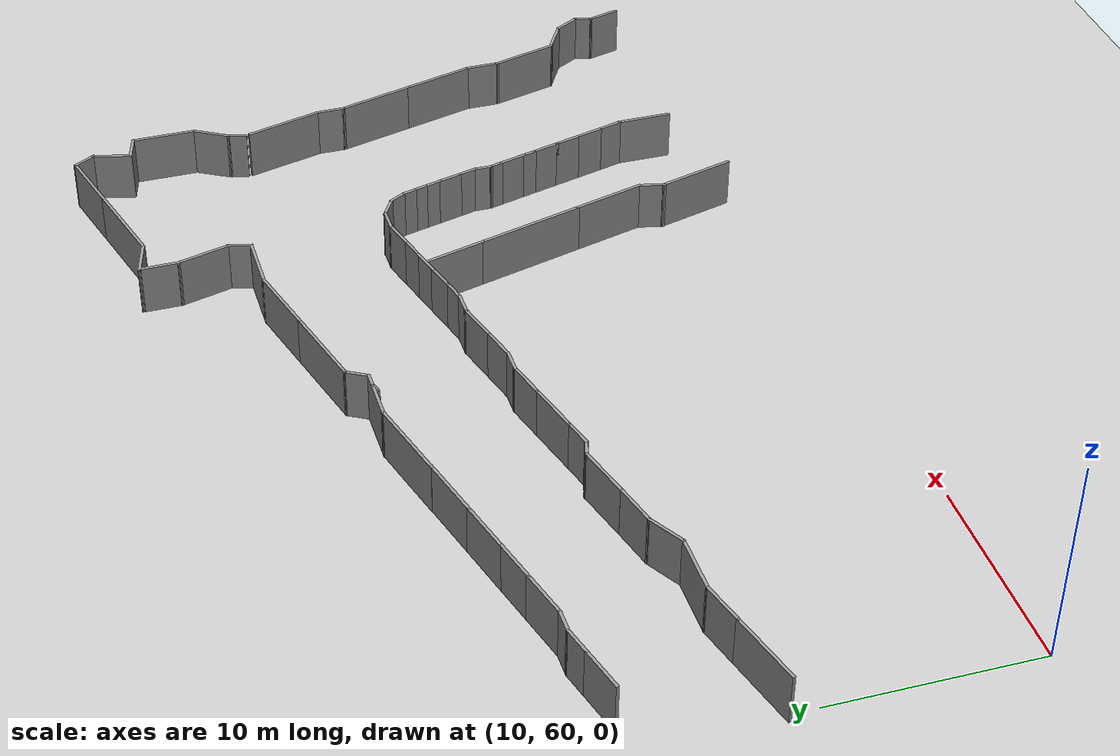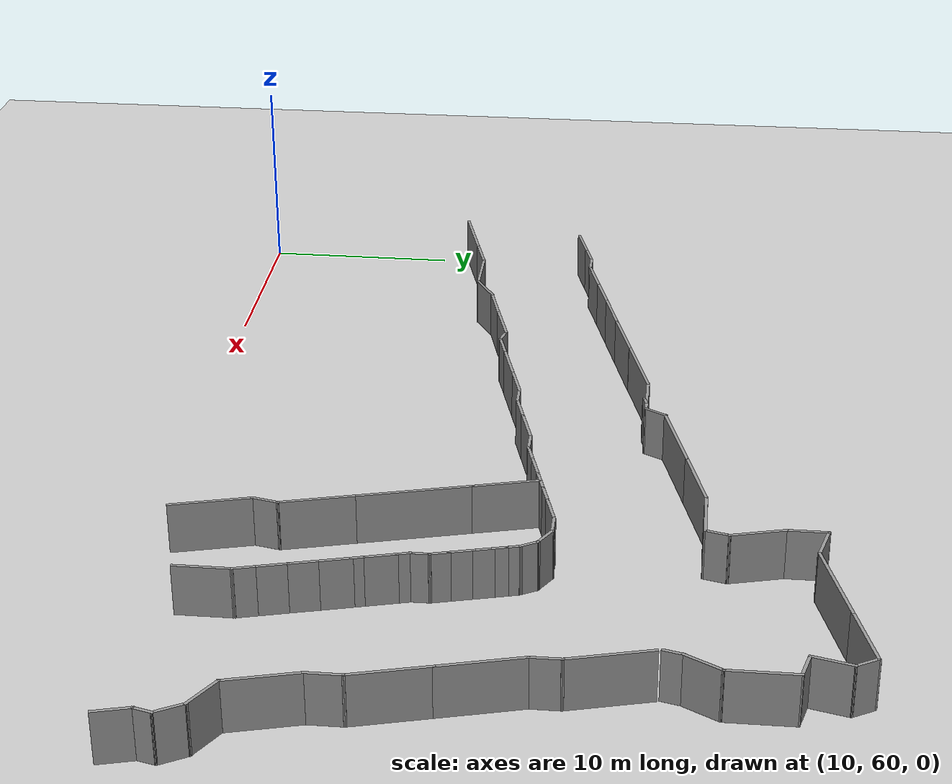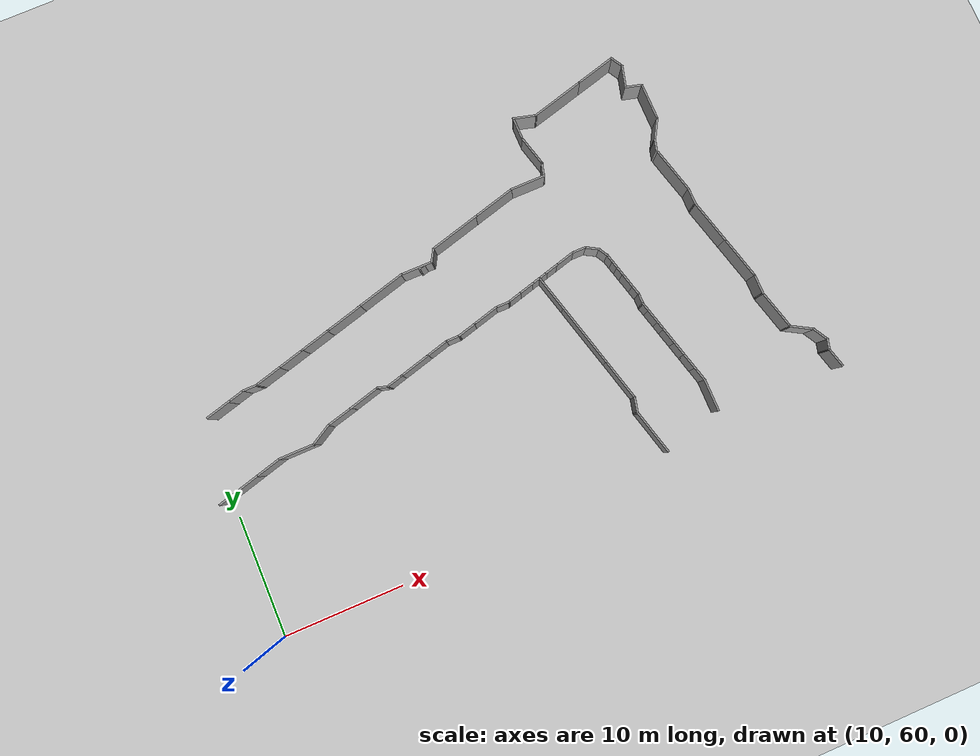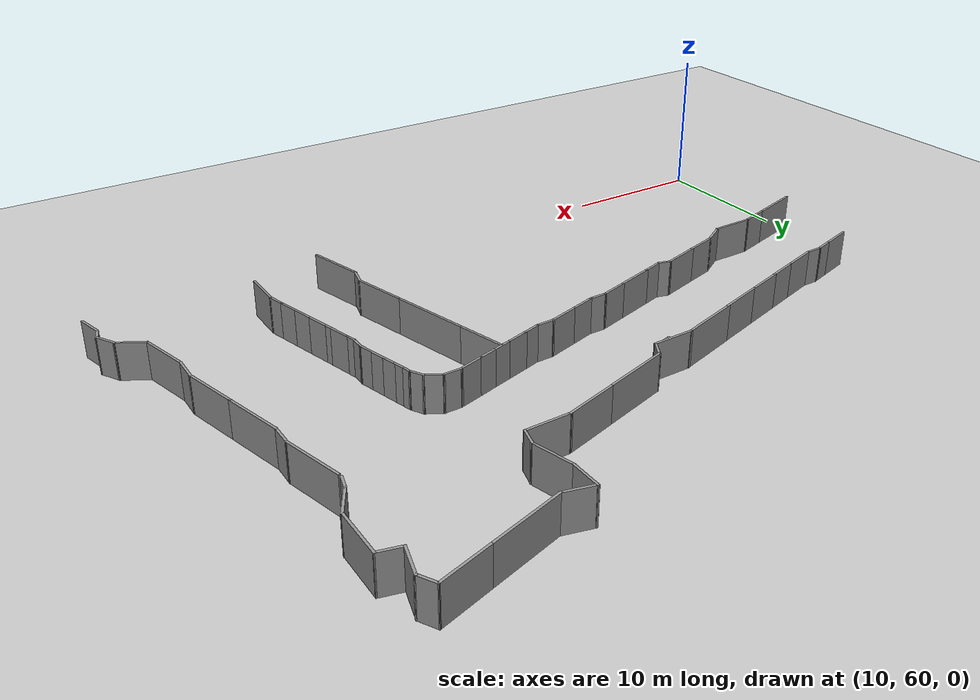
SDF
<sdf version="1.7">
 <world name="default">
  <model name="ground_plane">
   <static>1</static>
   <link name="link">
    <collision name="collision">
     <geometry><plane><normal>0 0 1</normal><size>500 500</size></plane></geometry>
     <surface><friction><ode><mu>100</mu><mu2>50</mu2></ode></friction></surface>
    </collision>
    <visual name="visual">
     <cast_shadows>0</cast_shadows>
     <geometry><plane><normal>0 0 1</normal><size>500 500</size></plane></geometry>
     <material>
      <script><uri>file://media/materials/scripts/gazebo.material</uri><name>Gazebo/Grey</name></script>
     </material>
    </visual>
   </link>
  </model>
  <model name="out_door1">
   <pose>25.5832 12.3476 0 0 -0 0</pose>
   <link name="Wall_159">
    <collision name="Wall_159_Collision">
     <geometry><box><size>1.75 0.15 2.5</size></box></geometry>
     <pose>0 0 1.25 0 -0 0</pose>
    </collision>
    <visual name="Wall_159_Visual">
     <pose>0 0 1.25 0 -0 0</pose>
     <geometry><box><size>1.75 0.15 2.5</size></box></geometry>
     <material>
      <script><uri>file://media/materials/scripts/gazebo.material</uri><name>Gazebo/Grey</name></script>
      <ambient>1 1 1 1</ambient>
     </material>
     <meta><layer>0</layer></meta>
    </visual>
    <pose>32.9844 50.7025 0 0 -0 1.8326</pose>
   </link>
   <link name="Wall_160">
    <collision name="Wall_160_Collision">
     <geometry><box><size>1 0.15 2.5</size></box></geometry>
     <pose>0 0 1.25 0 -0 0</pose>
    </collision>
    <visual name="Wall_160_Visual">
     <pose>0 0 1.25 0 -0 0</pose>
     <geometry><box><size>1 0.15 2.5</size></box></geometry>
     <material>
      <script><uri>file://media/materials/scripts/gazebo.material</uri><name>Gazebo/Grey</name></script>
      <ambient>1 1 1 1</ambient>
     </material>
     <meta><layer>0</layer></meta>
    </visual>
    <pose>32.8873 51.8857 0 0 -0 1.309</pose>
   </link>
   <link name="Wall_161">
    <collision name="Wall_161_Collision">
     <geometry><box><size>1.5 0.15 2.5</size></box></geometry>
     <pose>0 0 1.25 0 -0 0</pose>
    </collision>
    <visual name="Wall_161_Visual">
     <pose>0 0 1.25 0 -0 0</pose>
     <geometry><box><size>1.5 0.15 2.5</size></box></geometry>
     <material>
      <script><uri>file://media/materials/scripts/gazebo.material</uri><name>Gazebo/Grey</name></script>
      <ambient>1 1 1 1</ambient>
     </material>
     <meta><layer>0</layer></meta>
    </visual>
    <pose>32.6598 52.8808 0 0 -0 2.0944</pose>
   </link>
   <link name="Wall_162">
    <collision name="Wall_162_Collision">
     <geometry><box><size>2 0.15 2.5</size></box></geometry>
     <pose>0 0 1.25 0 -0 0</pose>
    </collision>
    <visual name="Wall_162_Visual">
     <pose>0 0 1.25 0 -0 0</pose>
     <geometry><box><size>2 0.15 2.5</size></box></geometry>
     <material>
      <script><uri>file://media/materials/scripts/gazebo.material</uri><name>Gazebo/Grey</name></script>
      <ambient>1 1 1 1</ambient>
     </material>
     <meta><layer>0</layer></meta>
    </visual>
    <pose>31.5212 53.9279 0 0 -0 2.61799</pose>
   </link>
   <link name="Wall_164">
    <collision name="Wall_164_Collision">
     <geometry><box><size>3.5 0.15 2.5</size></box></geometry>
     <pose>0 0 1.25 0 -0 0</pose>
    </collision>
    <visual name="Wall_164_Visual">
     <pose>0 0 1.25 0 -0 0</pose>
     <geometry><box><size>3.5 0.15 2.5</size></box></geometry>
     <material>
      <script><uri>file://media/materials/scripts/gazebo.material</uri><name>Gazebo/Grey</name></script>
      <ambient>1 1 1 1</ambient>
     </material>
     <meta><layer>0</layer></meta>
    </visual>
    <pose>30.2866 56.0083 0 0 -0 1.8326</pose>
   </link>
   <link name="Wall_165">
    <collision name="Wall_165_Collision">
     <geometry><box><size>1.75 0.15 2.5</size></box></geometry>
     <pose>0 0 1.25 0 -0 0</pose>
    </collision>
    <visual name="Wall_165_Visual">
     <pose>0 0 1.25 0 -0 0</pose>
     <geometry><box><size>1.75 0.15 2.5</size></box></geometry>
     <material>
      <script><uri>file://media/materials/scripts/gazebo.material</uri><name>Gazebo/Grey</name></script>
      <ambient>1 1 1 1</ambient>
     </material>
     <meta><layer>0</layer></meta>
    </visual>
    <pose>29.8531 58.4262 0 0 -0 1.5708</pose>
   </link>
   <link name="Wall_166">
    <collision name="Wall_166_Collision">
     <geometry><box><size>3.75 0.15 2.5</size></box></geometry>
     <pose>0 0 1.25 0 -0 0</pose>
    </collision>
    <visual name="Wall_166_Visual">
     <pose>0 0 1.25 0 -0 0</pose>
     <geometry><box><size>3.75 0.15 2.5</size></box></geometry>
     <material>
      <script><uri>file://media/materials/scripts/gazebo.material</uri><name>Gazebo/Grey</name></script>
      <ambient>1 1 1 1</ambient>
     </material>
     <meta><layer>0</layer></meta>
    </visual>
    <pose>29.3872 60.9649 0 0 -0 1.8326</pose>
   </link>
   <link name="Wall_167">
    <collision name="Wall_167_Collision">
     <geometry><box><size>4 0.15 2.5</size></box></geometry>
     <pose>0 0 1.25 0 -0 0</pose>
    </collision>
    <visual name="Wall_167_Visual">
     <pose>0 0 1.25 0 -0 0</pose>
     <geometry><box><size>4 0.15 2.5</size></box></geometry>
     <material>
      <script><uri>file://media/materials/scripts/gazebo.material</uri><name>Gazebo/Grey</name></script>
      <ambient>1 1 1 1</ambient>
     </material>
     <meta><layer>0</layer></meta>
    </visual>
    <pose>28.4231 64.563 0 0 -0 1.8326</pose>
   </link>
   <link name="Wall_168">
    <collision name="Wall_168_Collision">
     <geometry><box><size>1.5 0.15 2.5</size></box></geometry>
     <pose>0 0 1.25 0 -0 0</pose>
    </collision>
    <visual name="Wall_168_Visual">
     <pose>0 0 1.25 0 -0 0</pose>
     <geometry><box><size>1.5 0.15 2.5</size></box></geometry>
     <material>
      <script><uri>file://media/materials/scripts/gazebo.material</uri><name>Gazebo/Grey</name></script>
      <ambient>1 1 1 1</ambient>
     </material>
     <meta><layer>0</layer></meta>
    </visual>
    <pose>27.9249 67.0974 0 0 -0 1.5708</pose>
   </link>
   <link name="Wall_169">
    <collision name="Wall_169_Collision">
     <geometry><box><size>4 0.15 2.5</size></box></geometry>
     <pose>0 0 1.25 0 -0 0</pose>
    </collision>
    <visual name="Wall_169_Visual">
     <pose>0 0 1.25 0 -0 0</pose>
     <geometry><box><size>4 0.15 2.5</size></box></geometry>
     <material>
      <script><uri>file://media/materials/scripts/gazebo.material</uri><name>Gazebo/Grey</name></script>
      <ambient>1 1 1 1</ambient>
     </material>
     <meta><layer>0</layer></meta>
    </visual>
    <pose>27.4267 69.6318 0 0 -0 1.8326</pose>
   </link>
   <link name="Wall_172">
    <collision name="Wall_172_Collision">
     <geometry><box><size>1 0.15 2.5</size></box></geometry>
     <pose>0 0 1.25 0 -0 0</pose>
    </collision>
    <visual name="Wall_172_Visual">
     <pose>0 0 1.25 0 -0 0</pose>
     <geometry><box><size>1 0.15 2.5</size></box></geometry>
     <material>
      <script><uri>file://media/materials/scripts/gazebo.material</uri><name>Gazebo/Grey</name></script>
      <ambient>1 1 1 1</ambient>
     </material>
     <meta><layer>0</layer></meta>
    </visual>
    <pose>26.9941 72.1611 0 0 -0 1.309</pose>
   </link>
   <link name="Wall_173">
    <collision name="Wall_173_Collision">
     <geometry><box><size>2 0.15 2.5</size></box></geometry>
     <pose>0 0 1.25 0 -0 0</pose>
    </collision>
    <visual name="Wall_173_Visual">
     <pose>0 0 1.25 0 -0 0</pose>
     <geometry><box><size>2 0.15 2.5</size></box></geometry>
     <material>
      <script><uri>file://media/materials/scripts/gazebo.material</uri><name>Gazebo/Grey</name></script>
      <ambient>1 1 1 1</ambient>
     </material>
     <meta><layer>0</layer></meta>
    </visual>
    <pose>27.5666 73.3727 0 0 -0 1.0472</pose>
   </link>
   <link name="Wall_174">
    <collision name="Wall_174_Collision">
     <geometry><box><size>3.25 0.15 2.5</size></box></geometry>
     <pose>0 0 1.25 0 -0 0</pose>
    </collision>
    <visual name="Wall_174_Visual">
     <pose>0 0 1.25 0 -0 0</pose>
     <geometry><box><size>3.25 0.15 2.5</size></box></geometry>
     <material>
      <script><uri>file://media/materials/scripts/gazebo.material</uri><name>Gazebo/Grey</name></script>
      <ambient>1 1 1 1</ambient>
     </material>
     <meta><layer>0</layer></meta>
    </visual>
    <pose>28.0291 75.7237 0 0 -0 1.5708</pose>
   </link>
   <link name="Wall_175">
    <collision name="Wall_175_Collision">
     <geometry><box><size>1.5 0.15 2.5</size></box></geometry>
     <pose>0 0 1.25 0 -0 0</pose>
    </collision>
    <visual name="Wall_175_Visual">
     <pose>0 0 1.25 0 -0 0</pose>
     <geometry><box><size>1.5 0.15 2.5</size></box></geometry>
     <material>
      <script><uri>file://media/materials/scripts/gazebo.material</uri><name>Gazebo/Grey</name></script>
      <ambient>1 1 1 1</ambient>
     </material>
     <meta><layer>0</layer></meta>
    </visual>
    <pose>27.3771 77.4484 0 0 -0 2.87979</pose>
   </link>
   <link name="Wall_176">
    <collision name="Wall_176_Collision">
     <geometry><box><size>2 0.15 2.5</size></box></geometry>
     <pose>0 0 1.25 0 -0 0</pose>
    </collision>
    <visual name="Wall_176_Visual">
     <pose>0 0 1.25 0 -0 0</pose>
     <geometry><box><size>2 0.15 2.5</size></box></geometry>
     <material>
      <script><uri>file://media/materials/scripts/gazebo.material</uri><name>Gazebo/Grey</name></script>
      <ambient>1 1 1 1</ambient>
     </material>
     <meta><layer>0</layer></meta>
    </visual>
    <pose>26.9645 78.5166 0 0 -0 1.309</pose>
   </link>
   <link name="Wall_177">
    <collision name="Wall_177_Collision">
     <geometry><box><size>1.25 0.15 2.5</size></box></geometry>
     <pose>0 0 1.25 0 -0 0</pose>
    </collision>
    <visual name="Wall_177_Visual">
     <pose>0 0 1.25 0 -0 0</pose>
     <geometry><box><size>1.25 0.15 2.5</size></box></geometry>
     <material>
      <script><uri>file://media/materials/scripts/gazebo.material</uri><name>Gazebo/Grey</name></script>
      <ambient>1 1 1 1</ambient>
     </material>
     <meta><layer>0</layer></meta>
    </visual>
    <pose>26.9289 79.8864 0 0 -0 2.0944</pose>
   </link>
   <link name="Wall_178">
    <collision name="Wall_178_Collision">
     <geometry><box><size>3.5 0.15 2.5</size></box></geometry>
     <pose>0 0 1.25 0 -0 0</pose>
    </collision>
    <visual name="Wall_178_Visual">
     <pose>0 0 1.25 0 -0 0</pose>
     <geometry><box><size>3.5 0.15 2.5</size></box></geometry>
     <material>
      <script><uri>file://media/materials/scripts/gazebo.material</uri><name>Gazebo/Grey</name></script>
      <ambient>1 1 1 1</ambient>
     </material>
     <meta><layer>0</layer></meta>
    </visual>
    <pose>25.036 79.9292 0 0 -0 -2.87979</pose>
   </link>
   <link name="Wall_179">
    <collision name="Wall_179_Collision">
     <geometry><box><size>4.75 0.15 2.5</size></box></geometry>
     <pose>0 0 1.25 0 -0 0</pose>
    </collision>
    <visual name="Wall_179_Visual">
     <pose>0 0 1.25 0 -0 0</pose>
     <geometry><box><size>4.75 0.15 2.5</size></box></geometry>
     <material>
      <script><uri>file://media/materials/scripts/gazebo.material</uri><name>Gazebo/Grey</name></script>
      <ambient>1 1 1 1</ambient>
     </material>
     <meta><layer>0</layer></meta>
    </visual>
    <pose>21.1964 78.9004 0 0 -0 -2.87979</pose>
   </link>
   <link name="Wall_180">
    <collision name="Wall_180_Collision">
     <geometry><box><size>2 0.15 2.5</size></box></geometry>
     <pose>0 0 1.25 0 -0 0</pose>
    </collision>
    <visual name="Wall_180_Visual">
     <pose>0 0 1.25 0 -0 0</pose>
     <geometry><box><size>2 0.15 2.5</size></box></geometry>
     <material>
      <script><uri>file://media/materials/scripts/gazebo.material</uri><name>Gazebo/Grey</name></script>
      <ambient>1 1 1 1</ambient>
     </material>
     <meta><layer>0</layer></meta>
    </visual>
    <pose>18.0813 78.5445 0 0 -0 2.87979</pose>
   </link>
   <link name="Wall_181">
    <collision name="Wall_181_Collision">
     <geometry><box><size>2 0.15 2.5</size></box></geometry>
     <pose>0 0 1.25 0 -0 0</pose>
    </collision>
    <visual name="Wall_181_Visual">
     <pose>0 0 1.25 0 -0 0</pose>
     <geometry><box><size>2 0.15 2.5</size></box></geometry>
     <material>
      <script><uri>file://media/materials/scripts/gazebo.material</uri><name>Gazebo/Grey</name></script>
      <ambient>1 1 1 1</ambient>
     </material>
     <meta><layer>0</layer></meta>
    </visual>
    <pose>17.1878 77.8589 0 0 -0 -1.5708</pose>
   </link>
   <link name="Wall_182">
    <collision name="Wall_182_Collision">
     <geometry><box><size>2.75 0.15 2.5</size></box></geometry>
     <pose>0 0 1.25 0 -0 0</pose>
    </collision>
    <visual name="Wall_182_Visual">
     <pose>0 0 1.25 0 -0 0</pose>
     <geometry><box><size>2.75 0.15 2.5</size></box></geometry>
     <material>
      <script><uri>file://media/materials/scripts/gazebo.material</uri><name>Gazebo/Grey</name></script>
      <ambient>1 1 1 1</ambient>
     </material>
     <meta><layer>0</layer></meta>
    </visual>
    <pose>17.5243 75.6782 0 0 -0 -1.309</pose>
   </link>
   <link name="Wall_183">
    <collision name="Wall_183_Collision">
     <geometry><box><size>1.25 0.15 2.5</size></box></geometry>
     <pose>0 0 1.25 0 -0 0</pose>
    </collision>
    <visual name="Wall_183_Visual">
     <pose>0 0 1.25 0 -0 0</pose>
     <geometry><box><size>1.25 0.15 2.5</size></box></geometry>
     <material>
      <script><uri>file://media/materials/scripts/gazebo.material</uri><name>Gazebo/Grey</name></script>
      <ambient>1 1 1 1</ambient>
     </material>
     <meta><layer>0</layer></meta>
    </visual>
    <pose>17.7184 73.8913 0 0 -0 -1.8326</pose>
   </link>
   <link name="Wall_184">
    <collision name="Wall_184_Collision">
     <geometry><box><size>3 0.15 2.5</size></box></geometry>
     <pose>0 0 1.25 0 -0 0</pose>
    </collision>
    <visual name="Wall_184_Visual">
     <pose>0 0 1.25 0 -0 0</pose>
     <geometry><box><size>3 0.15 2.5</size></box></geometry>
     <material>
      <script><uri>file://media/materials/scripts/gazebo.material</uri><name>Gazebo/Grey</name></script>
      <ambient>1 1 1 1</ambient>
     </material>
     <meta><layer>0</layer></meta>
    </visual>
    <pose>16.151 73.36 0 0 -0 3.14159</pose>
   </link>
   <link name="Wall_185">
    <collision name="Wall_185_Collision">
     <geometry><box><size>3.75 0.15 2.5</size></box></geometry>
     <pose>0 0 1.25 0 -0 0</pose>
    </collision>
    <visual name="Wall_185_Visual">
     <pose>0 0 1.25 0 -0 0</pose>
     <geometry><box><size>3.75 0.15 2.5</size></box></geometry>
     <material>
      <script><uri>file://media/materials/scripts/gazebo.material</uri><name>Gazebo/Grey</name></script>
      <ambient>1 1 1 1</ambient>
     </material>
     <meta><layer>0</layer></meta>
    </visual>
    <pose>12.9874 72.8941 0 0 -0 -2.87979</pose>
   </link>
   <link name="Wall_186">
    <collision name="Wall_186_Collision">
     <geometry><box><size>4.5 0.15 2.5</size></box></geometry>
     <pose>0 0 1.25 0 -0 0</pose>
    </collision>
    <visual name="Wall_186_Visual">
     <pose>0 0 1.25 0 -0 0</pose>
     <geometry><box><size>4.5 0.15 2.5</size></box></geometry>
     <material>
      <script><uri>file://media/materials/scripts/gazebo.material</uri><name>Gazebo/Grey</name></script>
      <ambient>1 1 1 1</ambient>
     </material>
     <meta><layer>0</layer></meta>
    </visual>
    <pose>9.14782 71.8653 0 0 -0 -2.87979</pose>
   </link>
   <link name="Wall_187">
    <collision name="Wall_187_Collision">
     <geometry><box><size>1.25 0.15 2.5</size></box></geometry>
     <pose>0 0 1.25 0 -0 0</pose>
    </collision>
    <visual name="Wall_187_Visual">
     <pose>0 0 1.25 0 -0 0</pose>
     <geometry><box><size>1.25 0.15 2.5</size></box></geometry>
     <material>
      <script><uri>file://media/materials/scripts/gazebo.material</uri><name>Gazebo/Grey</name></script>
      <ambient>1 1 1 1</ambient>
     </material>
     <meta><layer>0</layer></meta>
    </visual>
    <pose>6.77193 70.8261 0 0 -0 -2.0944</pose>
   </link>
   <link name="Wall_188">
    <collision name="Wall_188_Collision">
     <geometry><box><size>2.84305 0.15 2.5</size></box></geometry>
     <pose>0 0 1.25 0 -0 0</pose>
    </collision>
    <visual name="Wall_188_Visual">
     <pose>0 0 1.25 0 -0 0</pose>
     <geometry><box><size>2.84305 0.15 2.5</size></box></geometry>
     <material>
      <script><uri>file://media/materials/scripts/gazebo.material</uri><name>Gazebo/Grey</name></script>
      <ambient>1 1 1 1</ambient>
     </material>
     <meta><layer>0</layer></meta>
    </visual>
    <pose>5.15041 70.3498 0 0 -0 3.14159</pose>
   </link>
   <link name="Wall_189">
    <collision name="Wall_189_Collision">
     <geometry><box><size>4.33866 0.15 2.5</size></box></geometry>
     <pose>0 0 1.25 0 -0 0</pose>
    </collision>
    <visual name="Wall_189_Visual">
     <pose>0 0 1.25 0 -0 0</pose>
     <geometry><box><size>4.33866 0.15 2.5</size></box></geometry>
     <material>
      <script><uri>file://media/materials/scripts/gazebo.material</uri><name>Gazebo/Grey</name></script>
      <ambient>1 1 1 1</ambient>
     </material>
     <meta><layer>0</layer></meta>
    </visual>
    <pose>1.82817 69.805 0 0 -0 -2.87846</pose>
   </link>
   <link name="Wall_190">
    <collision name="Wall_190_Collision">
     <geometry><box><size>3.25 0.15 2.5</size></box></geometry>
     <pose>0 0 1.25 0 -0 0</pose>
    </collision>
    <visual name="Wall_190_Visual">
     <pose>0 0 1.25 0 -0 0</pose>
     <geometry><box><size>3.25 0.15 2.5</size></box></geometry>
     <material>
      <script><uri>file://media/materials/scripts/gazebo.material</uri><name>Gazebo/Grey</name></script>
      <ambient>1 1 1 1</ambient>
     </material>
     <meta><layer>0</layer></meta>
    </visual>
    <pose>-1.64474 68.8591 0 0 -0 -2.87979</pose>
   </link>
   <link name="Wall_192">
    <collision name="Wall_192_Collision">
     <geometry><box><size>0.25 0.15 2.5</size></box></geometry>
     <pose>0 0 1.25 0 -0 0</pose>
    </collision>
    <visual name="Wall_192_Visual">
     <pose>0 0 1.25 0 -0 0</pose>
     <geometry><box><size>0.25 0.15 2.5</size></box></geometry>
     <material>
      <script><uri>file://media/materials/scripts/gazebo.material</uri><name>Gazebo/Grey</name></script>
      <ambient>1 1 1 1</ambient>
     </material>
     <meta><layer>0</layer></meta>
    </visual>
    <pose>5.43832 70.2282 0 0 -0 0.261799</pose>
   </link>
   <link name="Wall_193">
    <collision name="Wall_193_Collision">
     <geometry><box><size>0.5 0.15 2.5</size></box></geometry>
     <pose>0 0 1.25 0 -0 0</pose>
    </collision>
    <visual name="Wall_193_Visual">
     <pose>0 0 1.25 0 -0 0</pose>
     <geometry><box><size>0.5 0.15 2.5</size></box></geometry>
     <material>
      <script><uri>file://media/materials/scripts/gazebo.material</uri><name>Gazebo/Grey</name></script>
      <ambient>1 1 1 1</ambient>
     </material>
     <meta><layer>0</layer></meta>
    </visual>
    <pose>5.65566 70.2864 0 0 -0 0.261799</pose>
   </link>
   <link name="Wall_195">
    <collision name="Wall_195_Collision">
     <geometry><box><size>2.75 0.15 2.5</size></box></geometry>
     <pose>0 0 1.25 0 -0 0</pose>
    </collision>
    <visual name="Wall_195_Visual">
     <pose>0 0 1.25 0 -0 0</pose>
     <geometry><box><size>2.75 0.15 2.5</size></box></geometry>
     <material>
      <script><uri>file://media/materials/scripts/gazebo.material</uri><name>Gazebo/Grey</name></script>
      <ambient>1 1 1 1</ambient>
     </material>
     <meta><layer>0</layer></meta>
    </visual>
    <pose>-4.39762 68.1215 0 0 -0 -2.87979</pose>
   </link>
   <link name="Wall_196">
    <collision name="Wall_196_Collision">
     <geometry><box><size>2.25 0.15 2.5</size></box></geometry>
     <pose>0 0 1.25 0 -0 0</pose>
    </collision>
    <visual name="Wall_196_Visual">
     <pose>0 0 1.25 0 -0 0</pose>
     <geometry><box><size>2.25 0.15 2.5</size></box></geometry>
     <material>
      <script><uri>file://media/materials/scripts/gazebo.material</uri><name>Gazebo/Grey</name></script>
      <ambient>1 1 1 1</ambient>
     </material>
     <meta><layer>0</layer></meta>
    </visual>
    <pose>-6.66755 67.5132 0 0 -0 -2.87979</pose>
   </link>
   <link name="Wall_197">
    <collision name="Wall_197_Collision">
     <geometry><box><size>2.5 0.15 2.5</size></box></geometry>
     <pose>0 0 1.25 0 -0 0</pose>
    </collision>
    <visual name="Wall_197_Visual">
     <pose>0 0 1.25 0 -0 0</pose>
     <geometry><box><size>2.5 0.15 2.5</size></box></geometry>
     <material>
      <script><uri>file://media/materials/scripts/gazebo.material</uri><name>Gazebo/Grey</name></script>
      <ambient>1 1 1 1</ambient>
     </material>
     <meta><layer>0</layer></meta>
    </visual>
    <pose>-8.81673 66.9374 0 0 -0 -2.87979</pose>
   </link>
   <link name="Wall_198">
    <collision name="Wall_198_Collision">
     <geometry><box><size>1.25 0.15 2.5</size></box></geometry>
     <pose>0 0 1.25 0 -0 0</pose>
    </collision>
    <visual name="Wall_198_Visual">
     <pose>0 0 1.25 0 -0 0</pose>
     <geometry><box><size>1.25 0.15 2.5</size></box></geometry>
     <material>
      <script><uri>file://media/materials/scripts/gazebo.material</uri><name>Gazebo/Grey</name></script>
      <ambient>1 1 1 1</ambient>
     </material>
     <meta><layer>0</layer></meta>
    </visual>
    <pose>-10.5017 66.6332 0 0 -0 3.14159</pose>
   </link>
   <link name="Wall_199">
    <collision name="Wall_199_Collision">
     <geometry><box><size>1.5 0.15 2.5</size></box></geometry>
     <pose>0 0 1.25 0 -0 0</pose>
    </collision>
    <visual name="Wall_199_Visual">
     <pose>0 0 1.25 0 -0 0</pose>
     <geometry><box><size>1.5 0.15 2.5</size></box></geometry>
     <material>
      <script><uri>file://media/materials/scripts/gazebo.material</uri><name>Gazebo/Grey</name></script>
      <ambient>1 1 1 1</ambient>
     </material>
     <meta><layer>0</layer></meta>
    </visual>
    <pose>-11.7037 66.4585 0 0 -0 -2.87979</pose>
   </link>
   <link name="Wall_200">
    <collision name="Wall_200_Collision">
     <geometry><box><size>2.25 0.15 2.5</size></box></geometry>
     <pose>0 0 1.25 0 -0 0</pose>
    </collision>
    <visual name="Wall_200_Visual">
     <pose>0 0 1.25 0 -0 0</pose>
     <geometry><box><size>2.25 0.15 2.5</size></box></geometry>
     <material>
      <script><uri>file://media/materials/scripts/gazebo.material</uri><name>Gazebo/Grey</name></script>
      <ambient>1 1 1 1</ambient>
     </material>
     <meta><layer>0</layer></meta>
    </visual>
    <pose>-13.3699 66.0121 0 0 -0 -2.87979</pose>
   </link>
   <link name="Wall_282">
    <collision name="Wall_282_Collision">
     <geometry><box><size>3.75 0.15 2.5</size></box></geometry>
     <pose>0 0 1.25 0 -0 0</pose>
    </collision>
    <visual name="Wall_282_Visual">
     <pose>0 0 1.25 0 -0 0</pose>
     <geometry><box><size>3.75 0.15 2.5</size></box></geometry>
     <material>
      <script><uri>file://media/materials/scripts/gazebo.material</uri><name>Gazebo/Grey</name></script>
      <ambient>1 1 1 1</ambient>
     </material>
     <meta><layer>0</layer></meta>
    </visual>
    <pose>-14.1119 59.5461 0 0 -0 0.261799</pose>
   </link>
   <link name="Wall_283">
    <collision name="Wall_283_Collision">
     <geometry><box><size>2.25 0.15 2.5</size></box></geometry>
     <pose>0 0 1.25 0 -0 0</pose>
    </collision>
    <visual name="Wall_283_Visual">
     <pose>0 0 1.25 0 -0 0</pose>
     <geometry><box><size>2.25 0.15 2.5</size></box></geometry>
     <material>
      <script><uri>file://media/materials/scripts/gazebo.material</uri><name>Gazebo/Grey</name></script>
      <ambient>1 1 1 1</ambient>
     </material>
     <meta><layer>0</layer></meta>
    </visual>
    <pose>-11.359 60.2837 0 0 -0 0.261799</pose>
   </link>
   <link name="Wall_284">
    <collision name="Wall_284_Collision">
     <geometry><box><size>3 0.15 2.5</size></box></geometry>
     <pose>0 0 1.25 0 -0 0</pose>
    </collision>
    <visual name="Wall_284_Visual">
     <pose>0 0 1.25 0 -0 0</pose>
     <geometry><box><size>3 0.15 2.5</size></box></geometry>
     <material>
      <script><uri>file://media/materials/scripts/gazebo.material</uri><name>Gazebo/Grey</name></script>
      <ambient>1 1 1 1</ambient>
     </material>
     <meta><layer>0</layer></meta>
    </visual>
    <pose>-8.91974 60.5555 0 0 -0 0</pose>
   </link>
   <link name="Wall_285">
    <collision name="Wall_285_Collision">
     <geometry><box><size>2 0.15 2.5</size></box></geometry>
     <pose>0 0 1.25 0 -0 0</pose>
    </collision>
    <visual name="Wall_285_Visual">
     <pose>0 0 1.25 0 -0 0</pose>
     <geometry><box><size>2 0.15 2.5</size></box></geometry>
     <material>
      <script><uri>file://media/materials/scripts/gazebo.material</uri><name>Gazebo/Grey</name></script>
      <ambient>1 1 1 1</ambient>
     </material>
     <meta><layer>0</layer></meta>
    </visual>
    <pose>-6.69367 61.018 0 0 -0 0.523599</pose>
   </link>
   <link name="Wall_286">
    <collision name="Wall_286_Collision">
     <geometry><box><size>2.33459 0.15 2.5</size></box></geometry>
     <pose>0 0 1.25 0 -0 0</pose>
    </collision>
    <visual name="Wall_286_Visual">
     <pose>0 0 1.25 0 -0 0</pose>
     <geometry><box><size>2.33459 0.15 2.5</size></box></geometry>
     <material>
      <script><uri>file://media/materials/scripts/gazebo.material</uri><name>Gazebo/Grey</name></script>
      <ambient>1 1 1 1</ambient>
     </material>
     <meta><layer>0</layer></meta>
    </visual>
    <pose>-4.83465 61.7522 0 0 -0 0.251439</pose>
   </link>
   <link name="Wall_287">
    <collision name="Wall_287_Collision">
     <geometry><box><size>2.75 0.15 2.5</size></box></geometry>
     <pose>0 0 1.25 0 -0 0</pose>
    </collision>
    <visual name="Wall_287_Visual">
     <pose>0 0 1.25 0 -0 0</pose>
     <geometry><box><size>2.75 0.15 2.5</size></box></geometry>
     <material>
      <script><uri>file://media/materials/scripts/gazebo.material</uri><name>Gazebo/Grey</name></script>
      <ambient>1 1 1 1</ambient>
     </material>
     <meta><layer>0</layer></meta>
    </visual>
    <pose>-2.53849 62.3604 0 0 -0 0.261799</pose>
   </link>
   <link name="Wall_289">
    <collision name="Wall_289_Collision">
     <geometry><box><size>1 0.15 2.5</size></box></geometry>
     <pose>0 0 1.25 0 -0 0</pose>
    </collision>
    <visual name="Wall_289_Visual">
     <pose>0 0 1.25 0 -0 0</pose>
     <geometry><box><size>1 0.15 2.5</size></box></geometry>
     <material>
      <script><uri>file://media/materials/scripts/gazebo.material</uri><name>Gazebo/Grey</name></script>
      <ambient>1 1 1 1</ambient>
     </material>
     <meta><layer>0</layer></meta>
    </visual>
    <pose>-0.872263 62.5869 0 0 -0 -0.261799</pose>
   </link>
   <link name="Wall_290">
    <collision name="Wall_290_Collision">
     <geometry><box><size>1.5 0.15 2.5</size></box></geometry>
     <pose>0 0 1.25 0 -0 0</pose>
    </collision>
    <visual name="Wall_290_Visual">
     <pose>0 0 1.25 0 -0 0</pose>
     <geometry><box><size>1.5 0.15 2.5</size></box></geometry>
     <material>
      <script><uri>file://media/materials/scripts/gazebo.material</uri><name>Gazebo/Grey</name></script>
      <ambient>1 1 1 1</ambient>
     </material>
     <meta><layer>0</layer></meta>
    </visual>
    <pose>0.190256 62.6516 0 0 -0 0.261799</pose>
   </link>
   <link name="Wall_291">
    <collision name="Wall_291_Collision">
     <geometry><box><size>2.75 0.15 2.5</size></box></geometry>
     <pose>0 0 1.25 0 -0 0</pose>
    </collision>
    <visual name="Wall_291_Visual">
     <pose>0 0 1.25 0 -0 0</pose>
     <geometry><box><size>2.75 0.15 2.5</size></box></geometry>
     <material>
      <script><uri>file://media/materials/scripts/gazebo.material</uri><name>Gazebo/Grey</name></script>
      <ambient>1 1 1 1</ambient>
     </material>
     <meta><layer>0</layer></meta>
    </visual>
    <pose>2.09796 63.1628 0 0 -0 0.261799</pose>
   </link>
   <link name="Wall_292">
    <collision name="Wall_292_Collision">
     <geometry><box><size>2 0.15 2.5</size></box></geometry>
     <pose>0 0 1.25 0 -0 0</pose>
    </collision>
    <visual name="Wall_292_Visual">
     <pose>0 0 1.25 0 -0 0</pose>
     <geometry><box><size>2 0.15 2.5</size></box></geometry>
     <material>
      <script><uri>file://media/materials/scripts/gazebo.material</uri><name>Gazebo/Grey</name></script>
      <ambient>1 1 1 1</ambient>
     </material>
     <meta><layer>0</layer></meta>
    </visual>
    <pose>4.24714 63.7387 0 0 -0 0.261799</pose>
   </link>
   <link name="Wall_293">
    <collision name="Wall_293_Collision">
     <geometry><box><size>1.25 0.15 2.5</size></box></geometry>
     <pose>0 0 1.25 0 -0 0</pose>
    </collision>
    <visual name="Wall_293_Visual">
     <pose>0 0 1.25 0 -0 0</pose>
     <geometry><box><size>1.25 0.15 2.5</size></box></geometry>
     <material>
      <script><uri>file://media/materials/scripts/gazebo.material</uri><name>Gazebo/Grey</name></script>
      <ambient>1 1 1 1</ambient>
     </material>
     <meta><layer>0</layer></meta>
    </visual>
    <pose>5.69063 63.9781 0 0 -0 0</pose>
   </link>
   <link name="Wall_294">
    <collision name="Wall_294_Collision">
     <geometry><box><size>1.75 0.15 2.5</size></box></geometry>
     <pose>0 0 1.25 0 -0 0</pose>
    </collision>
    <visual name="Wall_294_Visual">
     <pose>0 0 1.25 0 -0 0</pose>
     <geometry><box><size>1.75 0.15 2.5</size></box></geometry>
     <material>
      <script><uri>file://media/materials/scripts/gazebo.material</uri><name>Gazebo/Grey</name></script>
      <ambient>1 1 1 1</ambient>
     </material>
     <meta><layer>0</layer></meta>
    </visual>
    <pose>7.01337 64.1851 0 0 -0 0.261799</pose>
   </link>
   <link name="Wall_295">
    <collision name="Wall_295_Collision">
     <geometry><box><size>2.25 0.15 2.5</size></box></geometry>
     <pose>0 0 1.25 0 -0 0</pose>
    </collision>
    <visual name="Wall_295_Visual">
     <pose>0 0 1.25 0 -0 0</pose>
     <geometry><box><size>2.25 0.15 2.5</size></box></geometry>
     <material>
      <script><uri>file://media/materials/scripts/gazebo.material</uri><name>Gazebo/Grey</name></script>
      <ambient>1 1 1 1</ambient>
     </material>
     <meta><layer>0</layer></meta>
    </visual>
    <pose>8.80033 64.6639 0 0 -0 0.261799</pose>
   </link>
   <link name="Wall_296">
    <collision name="Wall_296_Collision">
     <geometry><box><size>1.25 0.15 2.5</size></box></geometry>
     <pose>0 0 1.25 0 -0 0</pose>
    </collision>
    <visual name="Wall_296_Visual">
     <pose>0 0 1.25 0 -0 0</pose>
     <geometry><box><size>1.25 0.15 2.5</size></box></geometry>
     <material>
      <script><uri>file://media/materials/scripts/gazebo.material</uri><name>Gazebo/Grey</name></script>
      <ambient>1 1 1 1</ambient>
     </material>
     <meta><layer>0</layer></meta>
    </visual>
    <pose>10.3645 64.9357 0 0 -0 0</pose>
   </link>
   <link name="Wall_297">
    <collision name="Wall_297_Collision">
     <geometry><box><size>1.25 0.15 2.5</size></box></geometry>
     <pose>0 0 1.25 0 -0 0</pose>
    </collision>
    <visual name="Wall_297_Visual">
     <pose>0 0 1.25 0 -0 0</pose>
     <geometry><box><size>1.25 0.15 2.5</size></box></geometry>
     <material>
      <script><uri>file://media/materials/scripts/gazebo.material</uri><name>Gazebo/Grey</name></script>
      <ambient>1 1 1 1</ambient>
     </material>
     <meta><layer>0</layer></meta>
    </visual>
    <pose>11.4458 65.078 0 0 -0 0.261799</pose>
   </link>
   <link name="Wall_298">
    <collision name="Wall_298_Collision">
     <geometry><box><size>1.5 0.15 2.5</size></box></geometry>
     <pose>0 0 1.25 0 -0 0</pose>
    </collision>
    <visual name="Wall_298_Visual">
     <pose>0 0 1.25 0 -0 0</pose>
     <geometry><box><size>1.5 0.15 2.5</size></box></geometry>
     <material>
      <script><uri>file://media/materials/scripts/gazebo.material</uri><name>Gazebo/Grey</name></script>
      <ambient>1 1 1 1</ambient>
     </material>
     <meta><layer>0</layer></meta>
    </visual>
    <pose>12.6291 65.3951 0 0 -0 0.261799</pose>
   </link>
   <link name="Wall_299">
    <collision name="Wall_299_Collision">
     <geometry><box><size>1.5 0.15 2.5</size></box></geometry>
     <pose>0 0 1.25 0 -0 0</pose>
    </collision>
    <visual name="Wall_299_Visual">
     <pose>0 0 1.25 0 -0 0</pose>
     <geometry><box><size>1.5 0.15 2.5</size></box></geometry>
     <material>
      <script><uri>file://media/materials/scripts/gazebo.material</uri><name>Gazebo/Grey</name></script>
      <ambient>1 1 1 1</ambient>
     </material>
     <meta><layer>0</layer></meta>
    </visual>
    <pose>13.9331 65.7445 0 0 -0 0.261799</pose>
   </link>
   <link name="Wall_300">
    <collision name="Wall_300_Collision">
     <geometry><box><size>1.25 0.15 2.5</size></box></geometry>
     <pose>0 0 1.25 0 -0 0</pose>
    </collision>
    <visual name="Wall_300_Visual">
     <pose>0 0 1.25 0 -0 0</pose>
     <geometry><box><size>1.25 0.15 2.5</size></box></geometry>
     <material>
      <script><uri>file://media/materials/scripts/gazebo.material</uri><name>Gazebo/Grey</name></script>
      <ambient>1 1 1 1</ambient>
     </material>
     <meta><layer>0</layer></meta>
    </visual>
    <pose>15.1163 66.0616 0 0 -0 0.261799</pose>
   </link>
   <link name="Wall_301">
    <collision name="Wall_301_Collision">
     <geometry><box><size>1.75 0.15 2.5</size></box></geometry>
     <pose>0 0 1.25 0 -0 0</pose>
    </collision>
    <visual name="Wall_301_Visual">
     <pose>0 0 1.25 0 -0 0</pose>
     <geometry><box><size>1.75 0.15 2.5</size></box></geometry>
     <material>
      <script><uri>file://media/materials/scripts/gazebo.material</uri><name>Gazebo/Grey</name></script>
      <ambient>1 1 1 1</ambient>
     </material>
     <meta><layer>0</layer></meta>
    </visual>
    <pose>16.4203 66.411 0 0 -0 0.261799</pose>
   </link>
   <link name="Wall_302">
    <collision name="Wall_302_Collision">
     <geometry><box><size>1.25 0.15 2.5</size></box></geometry>
     <pose>0 0 1.25 0 -0 0</pose>
    </collision>
    <visual name="Wall_302_Visual">
     <pose>0 0 1.25 0 -0 0</pose>
     <geometry><box><size>1.25 0.15 2.5</size></box></geometry>
     <material>
      <script><uri>file://media/materials/scripts/gazebo.material</uri><name>Gazebo/Grey</name></script>
      <ambient>1 1 1 1</ambient>
     </material>
     <meta><layer>0</layer></meta>
    </visual>
    <pose>17.7431 66.618 0 0 -0 0</pose>
   </link>
   <link name="Wall_303">
    <collision name="Wall_303_Collision">
     <geometry><box><size>1.25 0.15 2.5</size></box></geometry>
     <pose>0 0 1.25 0 -0 0</pose>
    </collision>
    <visual name="Wall_303_Visual">
     <pose>0 0 1.25 0 -0 0</pose>
     <geometry><box><size>1.25 0.15 2.5</size></box></geometry>
     <material>
      <script><uri>file://media/materials/scripts/gazebo.material</uri><name>Gazebo/Grey</name></script>
      <ambient>1 1 1 1</ambient>
     </material>
     <meta><layer>0</layer></meta>
    </visual>
    <pose>18.7694 66.343 0 0 -0 -0.523599</pose>
   </link>
   <link name="Wall_304">
    <collision name="Wall_304_Collision">
     <geometry><box><size>1 0.15 2.5</size></box></geometry>
     <pose>0 0 1.25 0 -0 0</pose>
    </collision>
    <visual name="Wall_304_Visual">
     <pose>0 0 1.25 0 -0 0</pose>
     <geometry><box><size>1 0.15 2.5</size></box></geometry>
     <material>
      <script><uri>file://media/materials/scripts/gazebo.material</uri><name>Gazebo/Grey</name></script>
      <ambient>1 1 1 1</ambient>
     </material>
     <meta><layer>0</layer></meta>
    </visual>
    <pose>19.4582 65.7 0 0 -0 -1.0472</pose>
   </link>
   <link name="Wall_306">
    <collision name="Wall_306_Collision">
     <geometry><box><size>0.75 0.15 2.5</size></box></geometry>
     <pose>0 0 1.25 0 -0 0</pose>
    </collision>
    <visual name="Wall_306_Visual">
     <pose>0 0 1.25 0 -0 0</pose>
     <geometry><box><size>0.75 0.15 2.5</size></box></geometry>
     <material>
      <script><uri>file://media/materials/scripts/gazebo.material</uri><name>Gazebo/Grey</name></script>
      <ambient>1 1 1 1</ambient>
     </material>
     <meta><layer>0</layer></meta>
    </visual>
    <pose>19.7483 65.0421 0 0 -0 -1.309</pose>
   </link>
   <link name="Wall_307">
    <collision name="Wall_307_Collision">
     <geometry><box><size>0.75 0.15 2.5</size></box></geometry>
     <pose>0 0 1.25 0 -0 0</pose>
    </collision>
    <visual name="Wall_307_Visual">
     <pose>0 0 1.25 0 -0 0</pose>
     <geometry><box><size>0.75 0.15 2.5</size></box></geometry>
     <material>
      <script><uri>file://media/materials/scripts/gazebo.material</uri><name>Gazebo/Grey</name></script>
      <ambient>1 1 1 1</ambient>
     </material>
     <meta><layer>0</layer></meta>
    </visual>
    <pose>19.9036 64.4626 0 0 -0 -1.309</pose>
   </link>
   <link name="Wall_308">
    <collision name="Wall_308_Collision">
     <geometry><box><size>1 0.15 2.5</size></box></geometry>
     <pose>0 0 1.25 0 -0 0</pose>
    </collision>
    <visual name="Wall_308_Visual">
     <pose>0 0 1.25 0 -0 0</pose>
     <geometry><box><size>1 0.15 2.5</size></box></geometry>
     <material>
      <script><uri>file://media/materials/scripts/gazebo.material</uri><name>Gazebo/Grey</name></script>
      <ambient>1 1 1 1</ambient>
     </material>
     <meta><layer>0</layer></meta>
    </visual>
    <pose>20.0913 63.7623 0 0 -0 -1.309</pose>
   </link>
   <link name="Wall_309">
    <collision name="Wall_309_Collision">
     <geometry><box><size>1.25 0.15 2.5</size></box></geometry>
     <pose>0 0 1.25 0 -0 0</pose>
    </collision>
    <visual name="Wall_309_Visual">
     <pose>0 0 1.25 0 -0 0</pose>
     <geometry><box><size>1.25 0.15 2.5</size></box></geometry>
     <material>
      <script><uri>file://media/materials/scripts/gazebo.material</uri><name>Gazebo/Grey</name></script>
      <ambient>1 1 1 1</ambient>
     </material>
     <meta><layer>0</layer></meta>
    </visual>
    <pose>20.3436 62.8205 0 0 -0 -1.309</pose>
   </link>
   <link name="Wall_310">
    <collision name="Wall_310_Collision">
     <geometry><box><size>1 0.15 2.5</size></box></geometry>
     <pose>0 0 1.25 0 -0 0</pose>
    </collision>
    <visual name="Wall_310_Visual">
     <pose>0 0 1.25 0 -0 0</pose>
     <geometry><box><size>1 0.15 2.5</size></box></geometry>
     <material>
      <script><uri>file://media/materials/scripts/gazebo.material</uri><name>Gazebo/Grey</name></script>
      <ambient>1 1 1 1</ambient>
     </material>
     <meta><layer>0</layer></meta>
    </visual>
    <pose>20.596 61.8787 0 0 -0 -1.309</pose>
   </link>
   <link name="Wall_311">
    <collision name="Wall_311_Collision">
     <geometry><box><size>1 0.15 2.5</size></box></geometry>
     <pose>0 0 1.25 0 -0 0</pose>
    </collision>
    <visual name="Wall_311_Visual">
     <pose>0 0 1.25 0 -0 0</pose>
     <geometry><box><size>1 0.15 2.5</size></box></geometry>
     <material>
      <script><uri>file://media/materials/scripts/gazebo.material</uri><name>Gazebo/Grey</name></script>
      <ambient>1 1 1 1</ambient>
     </material>
     <meta><layer>0</layer></meta>
    </visual>
    <pose>20.706 61.0432 0 0 -0 -1.5708</pose>
   </link>
   <link name="Wall_312">
    <collision name="Wall_312_Collision">
     <geometry><box><size>0.75 0.15 2.5</size></box></geometry>
     <pose>0 0 1.25 0 -0 0</pose>
    </collision>
    <visual name="Wall_312_Visual">
     <pose>0 0 1.25 0 -0 0</pose>
     <geometry><box><size>0.75 0.15 2.5</size></box></geometry>
     <material>
      <script><uri>file://media/materials/scripts/gazebo.material</uri><name>Gazebo/Grey</name></script>
      <ambient>1 1 1 1</ambient>
     </material>
     <meta><layer>0</layer></meta>
    </visual>
    <pose>20.7836 60.3284 0 0 -0 -1.309</pose>
   </link>
   <link name="Wall_313">
    <collision name="Wall_313_Collision">
     <geometry><box><size>1.5 0.15 2.5</size></box></geometry>
     <pose>0 0 1.25 0 -0 0</pose>
    </collision>
    <visual name="Wall_313_Visual">
     <pose>0 0 1.25 0 -0 0</pose>
     <geometry><box><size>1.5 0.15 2.5</size></box></geometry>
     <material>
      <script><uri>file://media/materials/scripts/gazebo.material</uri><name>Gazebo/Grey</name></script>
      <ambient>1 1 1 1</ambient>
     </material>
     <meta><layer>0</layer></meta>
    </visual>
    <pose>21.036 59.3866 0 0 -0 -1.309</pose>
   </link>
   <link name="Wall_314">
    <collision name="Wall_314_Collision">
     <geometry><box><size>0.75 0.15 2.5</size></box></geometry>
     <pose>0 0 1.25 0 -0 0</pose>
    </collision>
    <visual name="Wall_314_Visual">
     <pose>0 0 1.25 0 -0 0</pose>
     <geometry><box><size>0.75 0.15 2.5</size></box></geometry>
     <material>
      <script><uri>file://media/materials/scripts/gazebo.material</uri><name>Gazebo/Grey</name></script>
      <ambient>1 1 1 1</ambient>
     </material>
     <meta><layer>0</layer></meta>
    </visual>
    <pose>21.2883 58.4449 0 0 -0 -1.309</pose>
   </link>
   <link name="Wall_316">
    <collision name="Wall_316_Collision">
     <geometry><box><size>1.5 0.15 2.5</size></box></geometry>
     <pose>0 0 1.25 0 -0 0</pose>
    </collision>
    <visual name="Wall_316_Visual">
     <pose>0 0 1.25 0 -0 0</pose>
     <geometry><box><size>1.5 0.15 2.5</size></box></geometry>
     <material>
      <script><uri>file://media/materials/scripts/gazebo.material</uri><name>Gazebo/Grey</name></script>
      <ambient>1 1 1 1</ambient>
     </material>
     <meta><layer>0</layer></meta>
    </visual>
    <pose>21.5407 57.5031 0 0 -0 -1.309</pose>
   </link>
   <link name="Wall_317">
    <collision name="Wall_317_Collision">
     <geometry><box><size>1.5 0.15 2.5</size></box></geometry>
     <pose>0 0 1.25 0 -0 0</pose>
    </collision>
    <visual name="Wall_317_Visual">
     <pose>0 0 1.25 0 -0 0</pose>
     <geometry><box><size>1.5 0.15 2.5</size></box></geometry>
     <material>
      <script><uri>file://media/materials/scripts/gazebo.material</uri><name>Gazebo/Grey</name></script>
      <ambient>1 1 1 1</ambient>
     </material>
     <meta><layer>0</layer></meta>
    </visual>
    <pose>21.8901 56.1991 0 0 -0 -1.309</pose>
   </link>
   <link name="Wall_318">
    <collision name="Wall_318_Collision">
     <geometry><box><size>1.5 0.15 2.5</size></box></geometry>
     <pose>0 0 1.25 0 -0 0</pose>
    </collision>
    <visual name="Wall_318_Visual">
     <pose>0 0 1.25 0 -0 0</pose>
     <geometry><box><size>1.5 0.15 2.5</size></box></geometry>
     <material>
      <script><uri>file://media/materials/scripts/gazebo.material</uri><name>Gazebo/Grey</name></script>
      <ambient>1 1 1 1</ambient>
     </material>
     <meta><layer>0</layer></meta>
    </visual>
    <pose>22.2395 54.8951 0 0 -0 -1.309</pose>
   </link>
   <link name="Wall_319">
    <collision name="Wall_319_Collision">
     <geometry><box><size>1.25 0.15 2.5</size></box></geometry>
     <pose>0 0 1.25 0 -0 0</pose>
    </collision>
    <visual name="Wall_319_Visual">
     <pose>0 0 1.25 0 -0 0</pose>
     <geometry><box><size>1.25 0.15 2.5</size></box></geometry>
     <material>
      <script><uri>file://media/materials/scripts/gazebo.material</uri><name>Gazebo/Grey</name></script>
      <ambient>1 1 1 1</ambient>
     </material>
     <meta><layer>0</layer></meta>
    </visual>
    <pose>22.5565 53.7118 0 0 -0 -1.309</pose>
   </link>
   <link name="Wall_321">
    <collision name="Wall_321_Collision">
     <geometry><box><size>2.75 0.15 2.5</size></box></geometry>
     <pose>0 0 1.25 0 -0 0</pose>
    </collision>
    <visual name="Wall_321_Visual">
     <pose>0 0 1.25 0 -0 0</pose>
     <geometry><box><size>2.75 0.15 2.5</size></box></geometry>
     <material>
      <script><uri>file://media/materials/scripts/gazebo.material</uri><name>Gazebo/Grey</name></script>
      <ambient>1 1 1 1</ambient>
     </material>
     <meta><layer>0</layer></meta>
    </visual>
    <pose>22.6989 51.8806 0 0 -0 -1.5708</pose>
   </link>
   <link name="Wall_453">
    <collision name="Wall_453_Collision">
     <geometry><box><size>3.25 0.15 2.5</size></box></geometry>
     <pose>0 0 1.25 0 -0 0</pose>
    </collision>
    <visual name="Wall_453_Visual">
     <pose>0 0 1.25 0 -0 0</pose>
     <geometry><box><size>3.25 0.15 2.5</size></box></geometry>
     <material>
      <script><uri>file://media/materials/scripts/gazebo.material</uri><name>Gazebo/Grey</name></script>
      <ambient>1 1 1 1</ambient>
     </material>
     <meta><layer>0</layer></meta>
    </visual>
    <pose>14.346 64.2184 0 0 -0 -1.309</pose>
   </link>
   <link name="Wall_454">
    <collision name="Wall_454_Collision">
     <geometry><box><size>5.5 0.15 2.5</size></box></geometry>
     <pose>0 0 1.25 0 -0 0</pose>
    </collision>
    <visual name="Wall_454_Visual">
     <pose>0 0 1.25 0 -0 0</pose>
     <geometry><box><size>5.5 0.15 2.5</size></box></geometry>
     <material>
      <script><uri>file://media/materials/scripts/gazebo.material</uri><name>Gazebo/Grey</name></script>
      <ambient>1 1 1 1</ambient>
     </material>
     <meta><layer>0</layer></meta>
    </visual>
    <pose>15.4395 60.1373 0 0 -0 -1.309</pose>
   </link>
   <link name="Wall_455">
    <collision name="Wall_455_Collision">
     <geometry><box><size>3.75 0.15 2.5</size></box></geometry>
     <pose>0 0 1.25 0 -0 0</pose>
    </collision>
    <visual name="Wall_455_Visual">
     <pose>0 0 1.25 0 -0 0</pose>
     <geometry><box><size>3.75 0.15 2.5</size></box></geometry>
     <material>
      <script><uri>file://media/materials/scripts/gazebo.material</uri><name>Gazebo/Grey</name></script>
      <ambient>1 1 1 1</ambient>
     </material>
     <meta><layer>0</layer></meta>
    </visual>
    <pose>16.5977 55.8148 0 0 -0 -1.309</pose>
   </link>
   <link name="Wall_456">
    <collision name="Wall_456_Collision">
     <geometry><box><size>1.40573 0.15 2.5</size></box></geometry>
     <pose>0 0 1.25 0 -0 0</pose>
    </collision>
    <visual name="Wall_456_Visual">
     <pose>0 0 1.25 0 -0 0</pose>
     <geometry><box><size>1.40573 0.15 2.5</size></box></geometry>
     <material>
      <script><uri>file://media/materials/scripts/gazebo.material</uri><name>Gazebo/Grey</name></script>
      <ambient>1 1 1 1</ambient>
     </material>
     <meta><layer>0</layer></meta>
    </visual>
    <pose>16.9213 53.4647 0 0 -0 -1.79951</pose>
   </link>
   <link name="Wall_457">
    <collision name="Wall_457_Collision">
     <geometry><box><size>4 0.15 2.5</size></box></geometry>
     <pose>0 0 1.25 0 -0 0</pose>
    </collision>
    <visual name="Wall_457_Visual">
     <pose>0 0 1.25 0 -0 0</pose>
     <geometry><box><size>4 0.15 2.5</size></box></geometry>
     <material>
      <script><uri>file://media/materials/scripts/gazebo.material</uri><name>Gazebo/Grey</name></script>
      <ambient>1 1 1 1</ambient>
     </material>
     <meta><layer>0</layer></meta>
    </visual>
    <pose>17.2771 51.0472 0 0 -0 -1.309</pose>
   </link>
   <static>1</static>
  </model>
 </world>
</sdf>
